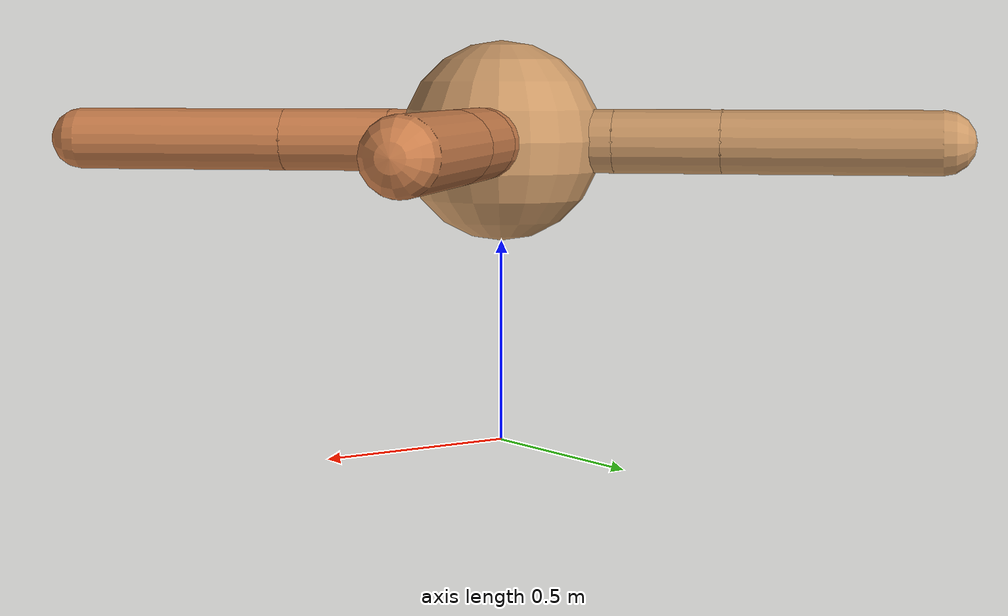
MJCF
<?xml version="1.0" ?>
<mujoco model="ant">

	<compiler angle="degree" coordinate="local" inertiafromgeom="true"/>

	<option integrator="RK4" timestep="0.01"/>

	<custom>

		<numeric data="0.0 0.0 0.55 1.0 0.0 0.0 0.0 0.0 1.0 0.0 -1.0 0.0 -1.0 0.0 1.0" name="init_qpos"/>

	</custom>

	<default>

		<joint armature="1" damping="1" limited="true"/>

		<geom conaffinity="0" condim="3" density="5.0" friction="1.5 0.1 0.1" margin="0.01" rgba="0.8 0.6 0.4 1"/>

	</default>

	<worldbody>

		<body name="torso" pos="0 0 0.75">

			<geom name="torso_geom" pos="0 0 0" size="0.2482072787002378" type="sphere"/>

			<!--joint armature="0" damping="0" limited="false" margin="0.01" name="root" pos="0 0 0" type="free"/-->

			<body name="front_left_leg" pos="0 0 0">

				<geom fromto="0 0 0 0.2 0.2 0" name="aux_1_geom" size="0.08613840882574075" type="capsule" rgba=".8 .5 .3 1"/>

				<body name="aux_1" pos="0.2 0.2 0">

					<joint axis="0 0 1" name="hip_1" pos="0.0 0.0 0.0" range="-40 40" type="hinge"/>

					<geom fromto="0 0 0 0.18998461597950905 0.18998461597950905 0" name="left_leg_geom" size="0.08613840882574075" type="capsule" rgba=".8 .5 .3 1"/>

					<body pos="0.18998461597950905 0.18998461597950905 0" name="front_left_foot">

						<joint axis="-1 1 0" name="ankle_1" pos="0.0 0.0 0.0" range="30 100" type="hinge"/>

						<geom fromto="0 0 0 0.3799692319590181 0.3799692319590181 0" name="left_ankle_geom" size="0.08613840882574075" type="capsule" rgba=".8 .5 .3 1"/>

					</body>

				</body>

			</body>

			<body name="front_right_leg" pos="0 0 0">

				<geom fromto="0 0 0 -0.2 0.2 0" name="aux_2_geom" size="0.07929377415507245" type="capsule"/>

				<body name="aux_2" pos="-0.2 0.2 0">

					<joint axis="0 0 1" name="hip_2" pos="0.0 0.0 0.0" range="-40 40" type="hinge"/>

					<geom fromto="0 0 0 -0.18683242521369134 0.18683242521369134 0" name="right_leg_geom" size="0.07929377415507245" type="capsule"/>

					<body pos="-0.18683242521369134 0.18683242521369134 0" name="front_right_foot">

						<joint axis="1 1 0" name="ankle_2" pos="0.0 0.0 0.0" range="-100 -30" type="hinge"/>

						<geom fromto="0 0 0 -0.3736648504273827 0.3736648504273827 0" name="right_ankle_geom" size="0.07929377415507245" type="capsule"/>

					</body>

				</body>

			</body>

			<body name="left_back_leg" pos="0 0 0">

				<geom fromto="0 0 0 -0.2 -0.2 0" name="aux_3_geom" size="0.07326756459650556" type="capsule"/>

				<body name="aux_3" pos="-0.2 -0.2 0">

					<joint axis="0 0 1" name="hip_3" pos="0.0 0.0 0.0" range="-40 40" type="hinge"/>

					<geom fromto="0 0 0 -0.20177461952513687 -0.20177461952513687 0" name="back_leg_geom" size="0.07326756459650556" type="capsule"/>

					<body pos="-0.20177461952513687 -0.20177461952513687 0" name="left_back_foot">

						<joint axis="-1 1 0" name="ankle_3" pos="0.0 0.0 0.0" range="-100 -30" type="hinge"/>

						<geom fromto="0 0 0 -0.40354923905027373 -0.40354923905027373 0" name="third_ankle_geom" size="0.07326756459650556" type="capsule"/>

					</body>

				</body>

			</body>

			<body name="right_back_leg" pos="0 0 0">

				<geom fromto="0 0 0 0.2 -0.2 0" name="aux_4_geom" size="0.07851470574838039" type="capsule" rgba=".8 .5 .3 1"/>

				<body name="aux_4" pos="0.2 -0.2 0">

					<joint axis="0 0 1" name="hip_4" pos="0.0 0.0 0.0" range="-40 40" type="hinge"/>

					<geom fromto="0 0 0 0.19252968063195713 -0.19252968063195713 0" name="rightback_leg_geom" size="0.07851470574838039" type="capsule" rgba=".8 .5 .3 1"/>

					<body pos="0.19252968063195713 -0.19252968063195713 0" name="right_back_foot">

						<joint axis="1 1 0" name="ankle_4" pos="0.0 0.0 0.0" range="30 100" type="hinge"/>

						<geom fromto="0 0 0 0.38505936126391427 -0.38505936126391427 0" name="fourth_ankle_geom" size="0.07851470574838039" type="capsule" rgba=".8 .5 .3 1"/>

					</body>

				</body>

			</body>

		</body>

	</worldbody>

	<actuator>

		<motor ctrllimited="true" ctrlrange="-1.0 1.0" joint="hip_4" gear="150"/>

		<motor ctrllimited="true" ctrlrange="-1.0 1.0" joint="ankle_4" gear="150"/>

		<motor ctrllimited="true" ctrlrange="-1.0 1.0" joint="hip_1" gear="150"/>

		<motor ctrllimited="true" ctrlrange="-1.0 1.0" joint="ankle_1" gear="150"/>

		<motor ctrllimited="true" ctrlrange="-1.0 1.0" joint="hip_2" gear="150"/>

		<motor ctrllimited="true" ctrlrange="-1.0 1.0" joint="ankle_2" gear="150"/>

		<motor ctrllimited="true" ctrlrange="-1.0 1.0" joint="hip_3" gear="150"/>

		<motor ctrllimited="true" ctrlrange="-1.0 1.0" joint="ankle_3" gear="150"/>

	</actuator>

</mujoco>
